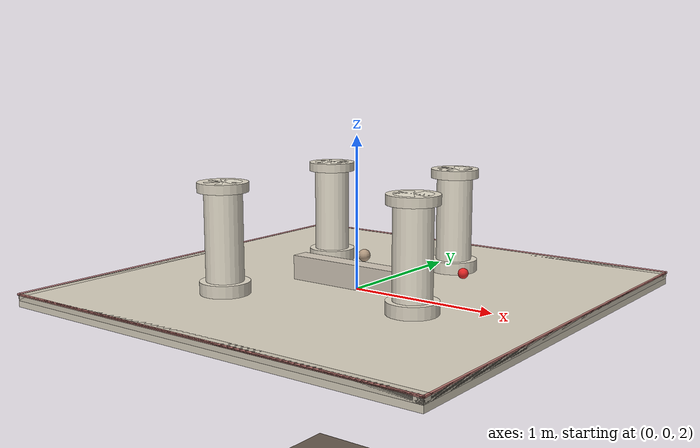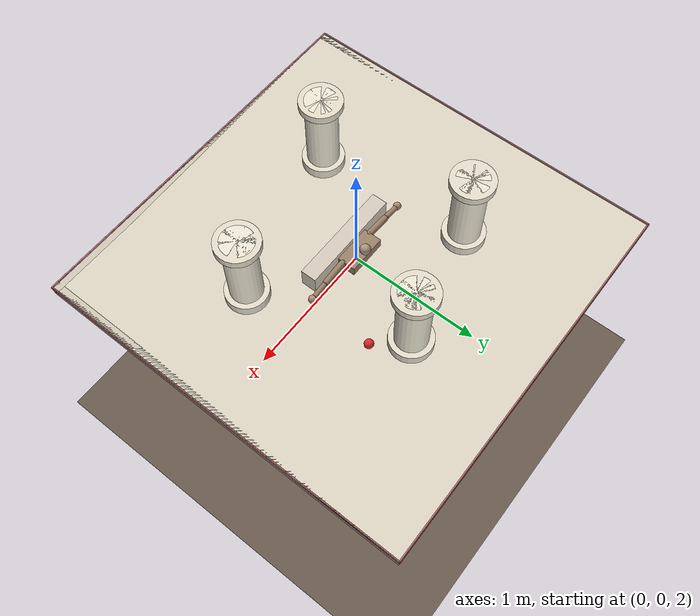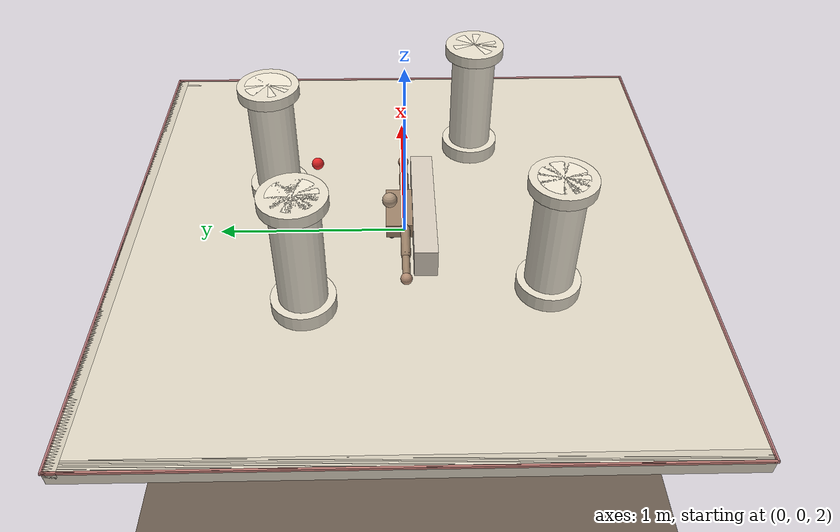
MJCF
<mujoco model="greek_room">
  <compiler angle="radian" inertiafromgeom="true"/>
  <option gravity="0 0 -9.81" integrator="RK4" timestep="0.01"/>

  <default>
    <joint armature="0.1" damping="2" limited="true"/>
    <geom contype="1" conaffinity="1" friction="0.8 0.3 0.1"/>
  </default>

  <asset>
    <texture builtin="checker" height="100" name="texfloor" rgb1="0.85 0.82 0.75" rgb2="0.78 0.75 0.68" type="2d" width="100"/>
    <material name="MatFloor" reflectance="0.2" shininess="0.3" specular="0.3" texrepeat="12 12" texture="texfloor"/>
    <texture builtin="flat" height="100" name="texcolumn" rgb1="0.9 0.88 0.82" rgb2="0.85 0.82 0.76" type="2d" width="100"/>
    <material name="MatColumn" texture="texcolumn"/>
    <texture builtin="flat" height="100" name="texground" rgb1="0.4 0.35 0.3" rgb2="0.4 0.35 0.3" type="2d" width="100"/>
    <material name="MatGround" texture="texground"/>
  </asset>

  <worldbody>
    <light cutoff="100" diffuse="1 0.95 0.85" dir="-0.2 -0.3 -1" directional="true"
           pos="0 0 6" specular="0.3 0.25 0.2"/>
    <!-- Warm fill light from the side -->
    <light cutoff="100" diffuse="0.3 0.28 0.22" dir="0.5 0.5 -0.5" directional="true"
           pos="-3 -3 4" specular="0 0 0"/>

    <!-- Ground below (where you land if you fall) -->
    <geom name="ground" type="plane" size="10 10 0.1" pos="0 0 0"
          rgba="0.4 0.35 0.3 1" material="MatGround"/>

    <!-- THE PLATFORM (elevated marble floor)                         -->
    <!-- 3m x 3m, 2m up. Larger than v8 to allow room for columns.   -->
    <geom name="platform" type="box" size="1.5 1.5 0.04" pos="0 0 2.0"
          rgba="0.85 0.82 0.75 1" material="MatFloor"/>

    <!-- Low step around the edge (you can feel it with your hand before going over) -->
    <geom name="step_N" type="box" size="1.5 0.03 0.02" pos="0 1.47 2.02"
          rgba="0.8 0.77 0.7 1"/>
    <geom name="step_S" type="box" size="1.5 0.03 0.02" pos="0 -1.47 2.02"
          rgba="0.8 0.77 0.7 1"/>
    <geom name="step_E" type="box" size="0.03 1.5 0.02" pos="1.47 0 2.02"
          rgba="0.8 0.77 0.7 1"/>
    <geom name="step_W" type="box" size="0.03 1.5 0.02" pos="-1.47 0 2.02"
          rgba="0.8 0.77 0.7 1"/>

    <!-- Edge markers (visual) -->
    <geom name="edge_N" type="capsule" fromto="-1.5 1.5 2.04 1.5 1.5 2.04" size="0.008"
          rgba="0.7 0.3 0.3 0.6" contype="0" conaffinity="0"/>
    <geom name="edge_S" type="capsule" fromto="-1.5 -1.5 2.04 1.5 -1.5 2.04" size="0.008"
          rgba="0.7 0.3 0.3 0.6" contype="0" conaffinity="0"/>
    <geom name="edge_E" type="capsule" fromto="1.5 -1.5 2.04 1.5 1.5 2.04" size="0.008"
          rgba="0.7 0.3 0.3 0.6" contype="0" conaffinity="0"/>
    <geom name="edge_W" type="capsule" fromto="-1.5 -1.5 2.04 -1.5 1.5 2.04" size="0.008"
          rgba="0.7 0.3 0.3 0.6" contype="0" conaffinity="0"/>

    <!-- THE COLUMNS                                                   -->
    <!-- Four Doric-style columns. Simple cylinders, thick enough to  -->
    <!-- hide the target ball behind them. Arranged asymmetrically so -->
    <!-- there's no trivial pattern to exploit.                       -->

    <!-- Column A: front-left area -->
    <geom name="column_A" type="cylinder" size="0.12 0.35" pos="-0.6 0.5 2.39"
          rgba="0.92 0.89 0.82 1" material="MatColumn"/>
    <!-- Column base (wider, like a Doric base) -->
    <geom name="base_A" type="cylinder" size="0.16 0.04" pos="-0.6 0.5 2.08"
          rgba="0.88 0.85 0.78 1" material="MatColumn"/>
    <!-- Column capital -->
    <geom name="cap_A" type="cylinder" size="0.16 0.03" pos="-0.6 0.5 2.71"
          rgba="0.88 0.85 0.78 1" material="MatColumn" contype="0" conaffinity="0"/>

    <!-- Column B: back-right area -->
    <geom name="column_B" type="cylinder" size="0.12 0.35" pos="0.7 -0.4 2.39"
          rgba="0.92 0.89 0.82 1" material="MatColumn"/>
    <geom name="base_B" type="cylinder" size="0.16 0.04" pos="0.7 -0.4 2.08"
          rgba="0.88 0.85 0.78 1" material="MatColumn"/>
    <geom name="cap_B" type="cylinder" size="0.16 0.03" pos="0.7 -0.4 2.71"
          rgba="0.88 0.85 0.78 1" material="MatColumn" contype="0" conaffinity="0"/>

    <!-- Column C: front-right, closer to center -->
    <geom name="column_C" type="cylinder" size="0.12 0.35" pos="0.3 0.7 2.39"
          rgba="0.92 0.89 0.82 1" material="MatColumn"/>
    <geom name="base_C" type="cylinder" size="0.16 0.04" pos="0.3 0.7 2.08"
          rgba="0.88 0.85 0.78 1" material="MatColumn"/>
    <geom name="cap_C" type="cylinder" size="0.16 0.03" pos="0.3 0.7 2.71"
          rgba="0.88 0.85 0.78 1" material="MatColumn" contype="0" conaffinity="0"/>

    <!-- Column D: back-left -->
    <geom name="column_D" type="cylinder" size="0.12 0.35" pos="-0.5 -0.7 2.39"
          rgba="0.92 0.89 0.82 1" material="MatColumn"/>
    <geom name="base_D" type="cylinder" size="0.16 0.04" pos="-0.5 -0.7 2.08"
          rgba="0.88 0.85 0.78 1" material="MatColumn"/>
    <geom name="cap_D" type="cylinder" size="0.16 0.03" pos="-0.5 -0.7 2.71"
          rgba="0.88 0.85 0.78 1" material="MatColumn" contype="0" conaffinity="0"/>

    <!-- A simple low wall / bench (adds variety to occlusion)        -->
    <!-- Like a stone bench between two columns                       -->
    <geom name="bench" type="box" size="0.4 0.06 0.08" pos="0.0 -0.1 2.12"
          rgba="0.82 0.78 0.72 1"/>

    <!-- THE CREATURE (same skateboard dude from v8)                  -->
    <body name="torso" pos="0 0 2.12">
      <joint name="root" type="free" armature="0" damping="0" limited="false"/>
      <!-- Torso body (visual + mass) -->
      <geom name="torso_geom" type="box" size="0.15 0.1 0.04"
            rgba="0.6 0.5 0.4 1" density="400"
            contype="0" conaffinity="0"/>
      <!-- Four wheels -->
      <geom name="wheel_fl" type="sphere" size="0.025"
            pos="-0.12 0.07 -0.04" rgba="0.3 0.3 0.3 1"
            friction="0.02 0.005 0.001" density="100"/>
      <geom name="wheel_fr" type="sphere" size="0.025"
            pos="0.12 0.07 -0.04" rgba="0.3 0.3 0.3 1"
            friction="0.02 0.005 0.001" density="100"/>
      <geom name="wheel_bl" type="sphere" size="0.025"
            pos="-0.12 -0.07 -0.04" rgba="0.3 0.3 0.3 1"
            friction="0.02 0.005 0.001" density="100"/>
      <geom name="wheel_br" type="sphere" size="0.025"
            pos="0.12 -0.07 -0.04" rgba="0.3 0.3 0.3 1"
            friction="0.02 0.005 0.001" density="100"/>
      <geom name="torso_skid" type="box" size="0.14 0.09 0.005"
            pos="0 0 -0.035" rgba="0.5 0.45 0.35 1" density="50"
            contype="0" conaffinity="0"/>
      <!-- Torso underside touch -->
      <site name="torso_touch" pos="0 0 -0.05" size="0.08" rgba="0 0 0 0"/>

      <!-- LEFT ARM -->
      <body name="left_shoulder" pos="-0.15 0 0.02">
        <joint name="left_shoulder_pitch" type="hinge" axis="0 1 0" range="-1.5 1.5"/>
        <joint name="left_shoulder_roll" type="hinge" axis="1 0 0" range="-0.8 1.5"/>
        <geom name="left_upper_arm" type="capsule" fromto="0 0 0 -0.18 0 -0.02"
              size="0.025" rgba="0.6 0.5 0.4 1"/>
        <body name="left_forearm" pos="-0.18 0 -0.02">
          <joint name="left_elbow" type="hinge" axis="0 1 0" range="-2.0 0.1"/>
          <geom name="left_forearm_geom" type="capsule" fromto="0 0 0 -0.15 0 -0.02"
                size="0.02" rgba="0.6 0.5 0.4 1"/>
          <body name="left_hand" pos="-0.15 0 -0.02">
            <geom name="left_hand_geom" type="sphere" size="0.03"
                  rgba="0.7 0.55 0.45 1"/>
            <site name="left_hand_touch" pos="0 0 0" size="0.031" rgba="0 0 0 0"/>
          </body>
        </body>
      </body>

      <!-- RIGHT ARM -->
      <body name="right_shoulder" pos="0.15 0 0.02">
        <joint name="right_shoulder_pitch" type="hinge" axis="0 1 0" range="-1.5 1.5"/>
        <joint name="right_shoulder_roll" type="hinge" axis="1 0 0" range="-1.5 0.8"/>
        <geom name="right_upper_arm" type="capsule" fromto="0 0 0 0.18 0 -0.02"
              size="0.025" rgba="0.6 0.5 0.4 1"/>
        <body name="right_forearm" pos="0.18 0 -0.02">
          <joint name="right_elbow" type="hinge" axis="0 1 0" range="-0.1 2.0"/>
          <geom name="right_forearm_geom" type="capsule" fromto="0 0 0 0.15 0 -0.02"
                size="0.02" rgba="0.6 0.5 0.4 1"/>
          <body name="right_hand" pos="0.15 0 -0.02">
            <geom name="right_hand_geom" type="sphere" size="0.03"
                  rgba="0.7 0.55 0.45 1"/>
            <site name="right_hand_touch" pos="0 0 0" size="0.031" rgba="0 0 0 0"/>
          </body>
        </body>
      </body>

      <!-- HEAD -->
      <body name="head_base" pos="0 0.08 0.06">
        <joint name="head_pan" type="hinge" axis="0 0 1" range="-1.5 1.5"/>
        <geom name="head_base_geom" type="sphere" size="0.015"
              rgba="0.6 0.5 0.4 1" contype="0" conaffinity="0"/>
        <body name="head" pos="0 0 0.03">
          <joint name="head_tilt" type="hinge" axis="1 0 0" range="-0.8 0.8"/>
          <geom name="head_geom" type="sphere" size="0.04"
                rgba="0.7 0.6 0.5 1" contype="0" conaffinity="0"/>
          <camera name="head_cam" pos="0 0.02 0" xyaxes="1 0 0 0 0.34 0.94" fovy="35"/>
        </body>
      </body>
    </body>

    <!-- TARGET BALL (can be placed behind any column by the env)     -->
    <body name="target" pos="0.5 0.5 2.08">
      <joint name="target_x" type="slide" axis="1 0 0" limited="true" range="-1.4 1.4"
             ref="0.5" armature="0" damping="0.5" stiffness="0"/>
      <joint name="target_y" type="slide" axis="0 1 0" limited="true" range="-1.4 1.4"
             ref="0.5" armature="0" damping="0.5" stiffness="0"/>
      <geom name="target_geom" type="sphere" size="0.035"
            rgba="0.9 0.15 0.15 1" density="200"/>
    </body>

    <!-- Cameras -->
    <camera name="overhead" pos="0 0 5.5" xyaxes="1 0 0 0 1 0" fovy="50"/>
    <camera name="side" pos="4.5 0 3" xyaxes="0 1 0 0 0 1" fovy="50"/>
    <!-- Perspective camera (like standing at the edge looking in) -->
    <camera name="perspective" pos="2.5 -2.5 3.5" xyaxes="0.7 0.7 0 -0.2 0.2 0.95" fovy="45"/>
  </worldbody>

  <actuator>
    <motor name="left_shoulder_pitch_motor" joint="left_shoulder_pitch"
           ctrllimited="true" ctrlrange="-1 1" gear="30"/>
    <motor name="left_shoulder_roll_motor" joint="left_shoulder_roll"
           ctrllimited="true" ctrlrange="-1 1" gear="30"/>
    <motor name="left_elbow_motor" joint="left_elbow"
           ctrllimited="true" ctrlrange="-1 1" gear="20"/>
    <motor name="right_shoulder_pitch_motor" joint="right_shoulder_pitch"
           ctrllimited="true" ctrlrange="-1 1" gear="30"/>
    <motor name="right_shoulder_roll_motor" joint="right_shoulder_roll"
           ctrllimited="true" ctrlrange="-1 1" gear="30"/>
    <motor name="right_elbow_motor" joint="right_elbow"
           ctrllimited="true" ctrlrange="-1 1" gear="20"/>
    <position name="head_pan_motor" joint="head_pan"
              ctrllimited="true" ctrlrange="-1.5 1.5" kp="30"/>
    <position name="head_tilt_motor" joint="head_tilt"
              ctrllimited="true" ctrlrange="-0.8 0.8" kp="30"/>
  </actuator>

  <sensor>
    <jointpos name="left_shoulder_pitch_pos" joint="left_shoulder_pitch"/>
    <jointpos name="left_shoulder_roll_pos" joint="left_shoulder_roll"/>
    <jointpos name="left_elbow_pos" joint="left_elbow"/>
    <jointpos name="right_shoulder_pitch_pos" joint="right_shoulder_pitch"/>
    <jointpos name="right_shoulder_roll_pos" joint="right_shoulder_roll"/>
    <jointpos name="right_elbow_pos" joint="right_elbow"/>
    <jointvel name="left_shoulder_pitch_vel" joint="left_shoulder_pitch"/>
    <jointvel name="left_shoulder_roll_vel" joint="left_shoulder_roll"/>
    <jointvel name="left_elbow_vel" joint="left_elbow"/>
    <jointvel name="right_shoulder_pitch_vel" joint="right_shoulder_pitch"/>
    <jointvel name="right_shoulder_roll_vel" joint="right_shoulder_roll"/>
    <jointvel name="right_elbow_vel" joint="right_elbow"/>
    <jointpos name="head_pan_pos" joint="head_pan"/>
    <jointpos name="head_tilt_pos" joint="head_tilt"/>
    <touch name="left_hand_touch" site="left_hand_touch"/>
    <touch name="right_hand_touch" site="right_hand_touch"/>
    <touch name="torso_touch" site="torso_touch"/>
  </sensor>
</mujoco>
